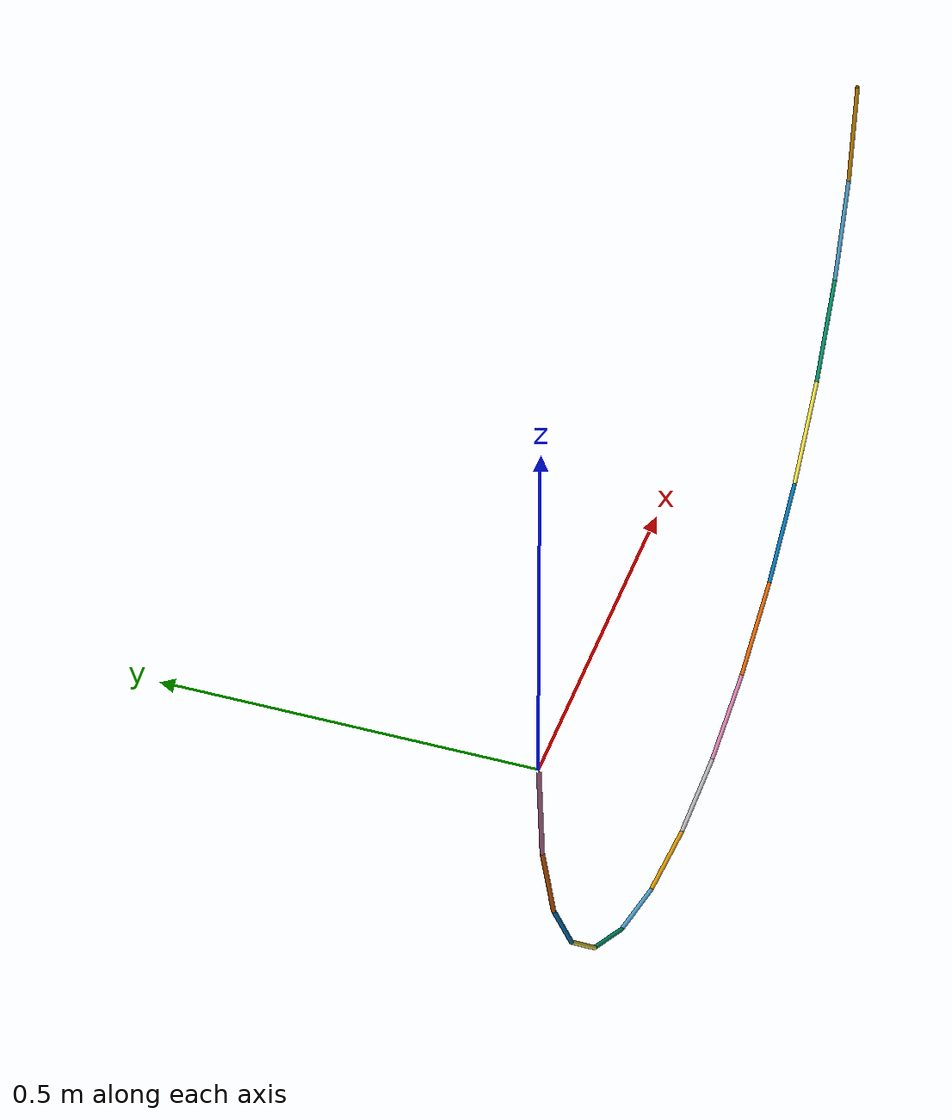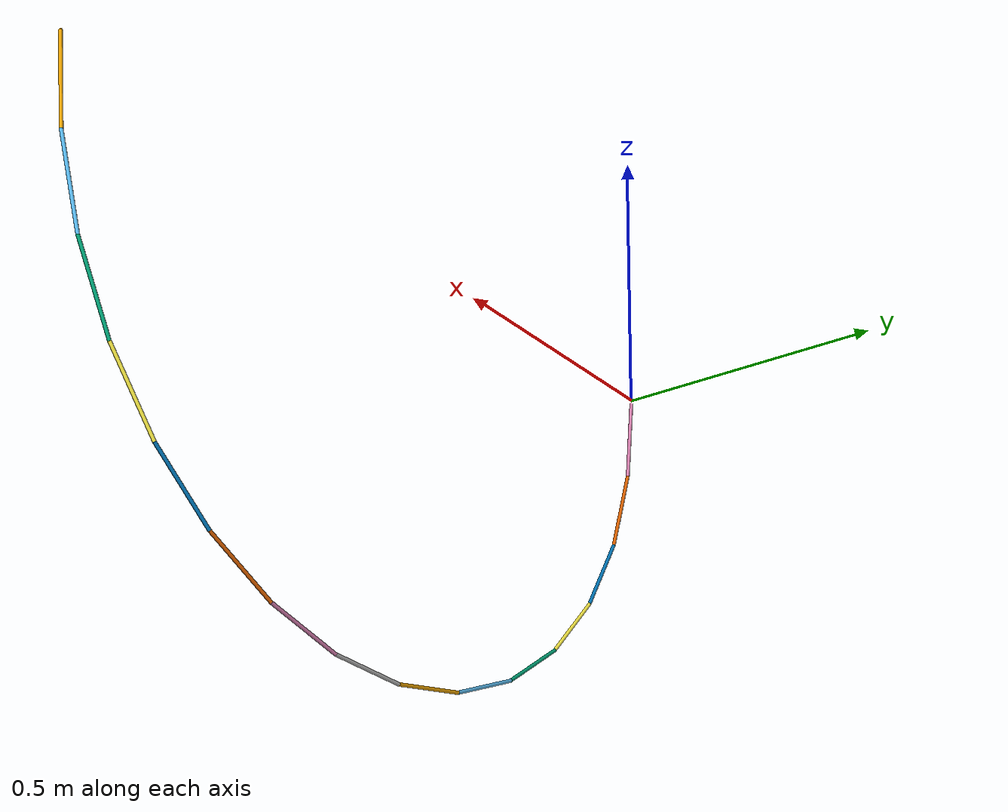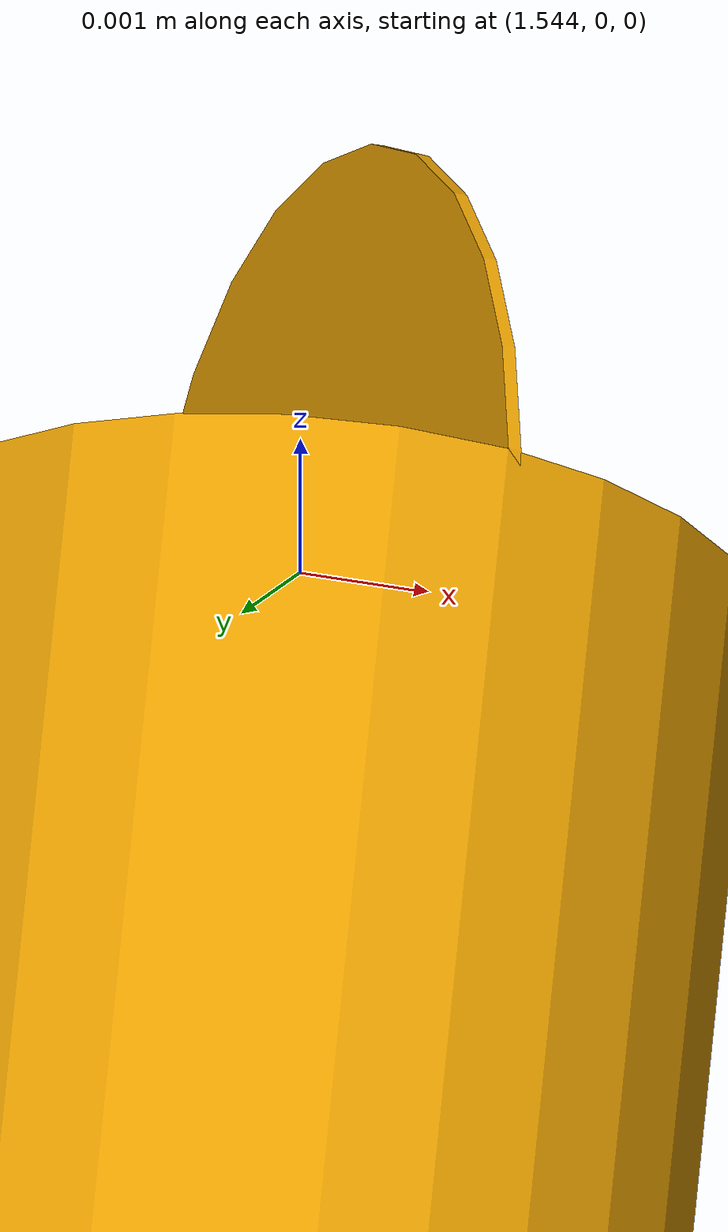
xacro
<?xml version="1.0" ?>
<robot name="tether_2m" xmlns:xacro="http://ros.org/wiki/xacro">
    <!-- Xacro to generate cable SDF -->

    <!-- Define properties -->
    <xacro:property name="cable_radius" value="0.0031" />
    <xacro:property name="cable_mass" value="0.02" />
    <xacro:property name="cable_length" value="2.421" />
    <xacro:property name="num_elements" value="15" />
    <xacro:property name="elem_length_ends" value="0.0001" />
    <xacro:property name="elem_mass_ends" value="0.0001" />

    <!-- Joint properties -->
    <xacro:property name="joint_friction" value="0" />
    <xacro:property name="joint_damping" value="0.002" />

    <!-- Calculations -->
    <xacro:property name="elem_mass_main" value="${cable_mass/num_elements}" />

    <xacro:property name="ang_e" value="${pi/num_elements}"/>
    <xacro:property name="ang_i" value="${pi - ang_e}"/>
    <xacro:property name="elem_length_main" value="${cable_length/num_elements}"/>
    <xacro:property name="dist_connect_points" value="${elem_length_main/sin(pi/(2*num_elements))}"/>

    <!-- Define link macro -->
    <xacro:macro name="cable_element" params="elem_name elem_length elem_mass">
        <link name="${elem_name}">
            <inertial>
                <origin xyz="${elem_length/2} 0 0" rpy="0 ${pi/2} 0" />
                <mass value="${elem_mass}"/>
                <inertia ixx="${1/12*elem_mass*(3*cable_radius**2 + elem_length**2)}" ixy="0" ixz="0" iyy="${1/12*elem_mass*(3*cable_radius**2 + elem_length**2)}" iyz="0" izz="${1/2*elem_mass*(cable_radius**2)}" />
            </inertial>
            <visual>
                <origin xyz="${elem_length/2} 0 0" rpy="0 ${pi/2} 0" />
                <geometry>
                    <cylinder length="${elem_length}" radius="0.0031"/>
                </geometry>
            </visual>
        </link>
    </xacro:macro>

    <!-- Recursive loop to generate multiple elements and joints for said elements -->
    <xacro:macro name="generate_cable" params="elem_num">
        <!-- Generate elements and recurse-->
        <xacro:cable_element elem_name="element_${elem_num}" elem_length="${elem_length_main}" elem_mass="${elem_mass_main}" />

        <xacro:if value="${elem_num-1}">
            <xacro:generate_cable elem_num="${elem_num-1}" />
        </xacro:if>

        <!-- Define joints -->
        <xacro:if value="${elem_num-1 > 0}">
            <joint name="joint_${elem_num-1}_to_${elem_num}" type="continuous">
                <axis xyz="0. 1. 0."/>

                <origin xyz="${elem_length_main} 0 0" rpy="0 ${-ang_e} 0"/>

                <parent link="element_${elem_num-1}"/>
                <child link="element_${elem_num}"/>

                <dynamics damping="0.002" friction="0"/>
            </joint>

        </xacro:if>

    </xacro:macro>

    <!-- Call recursive loop to generate cable -->
    <xacro:generate_cable elem_num="15" />

    <!-- Add start and end elements and joints-->
    <xacro:cable_element elem_name="element_first" elem_length="0.0001" elem_mass="0.0001" />
    <xacro:cable_element elem_name="element_last" elem_length="0.0001" elem_mass="0.0001" />

    <joint name="joint_0_to_1" type="continuous">
        <axis xyz="0. 1. 0."/>
        <origin xyz="0.0001 0 0" rpy="0 ${ang_i/2} 0"/>
        <parent link="element_first"/>
        <child link="element_1"/>
        <dynamics damping="0.002" friction="0"/>
    </joint>
    <joint name="joint_15_to_${num_elements+1}" type="continuous">
        <axis xyz="0. 1. 0."/>
        <origin xyz="${elem_length_main} 0 0" rpy="0 ${(pi-ang_e)/2} 0"/>
        <parent link="element_15"/>
        <child link="element_last"/>
        <dynamics damping="0.002" friction="0"/>
    </joint>

</robot>
